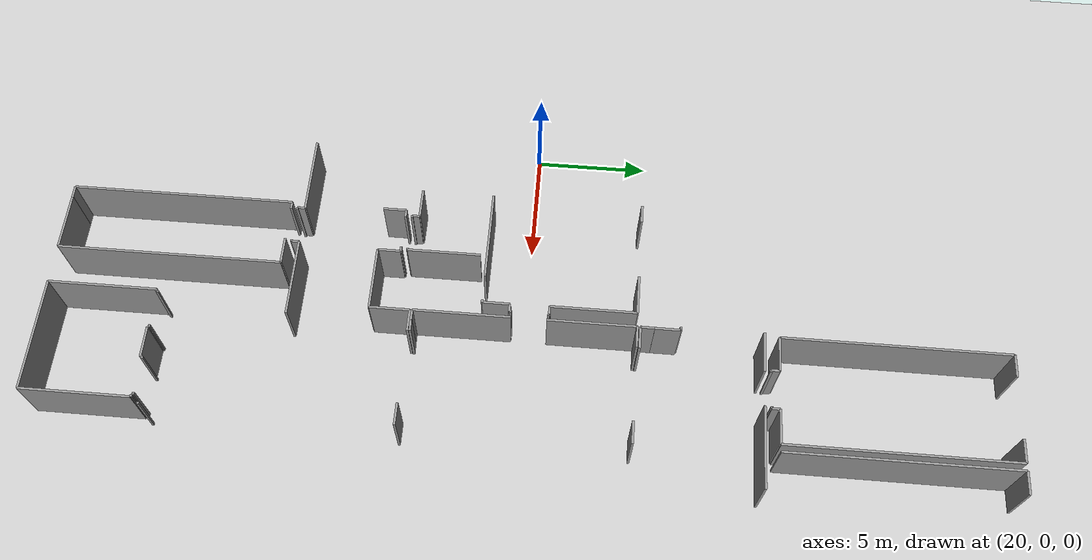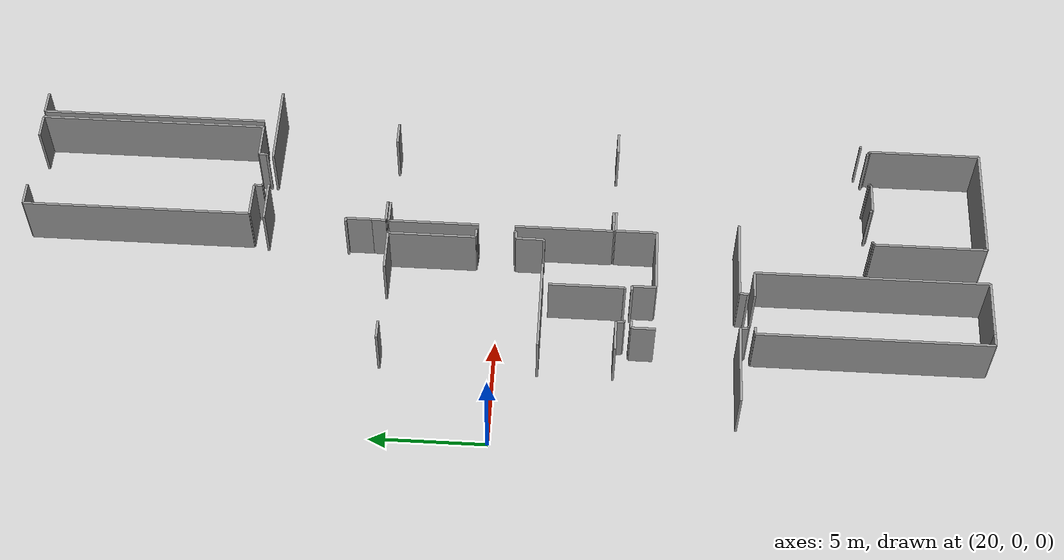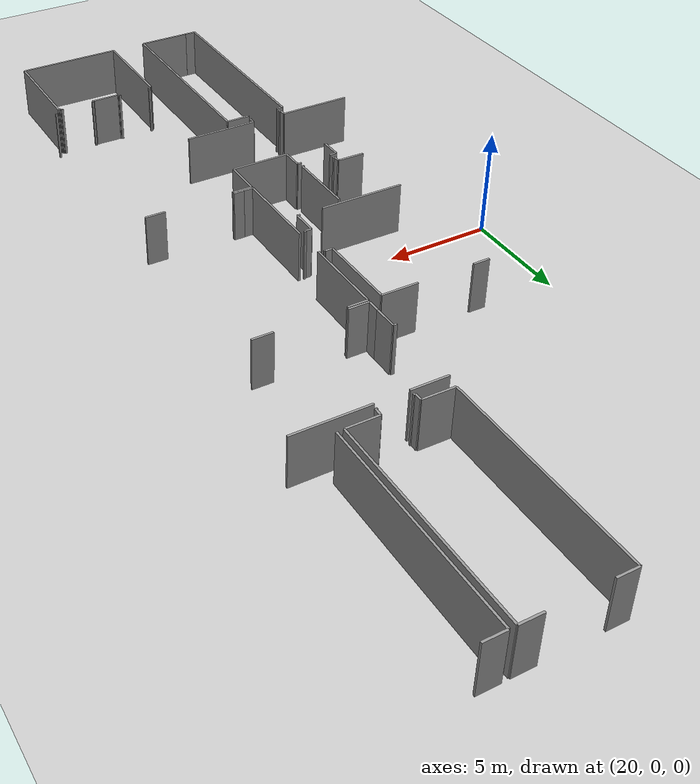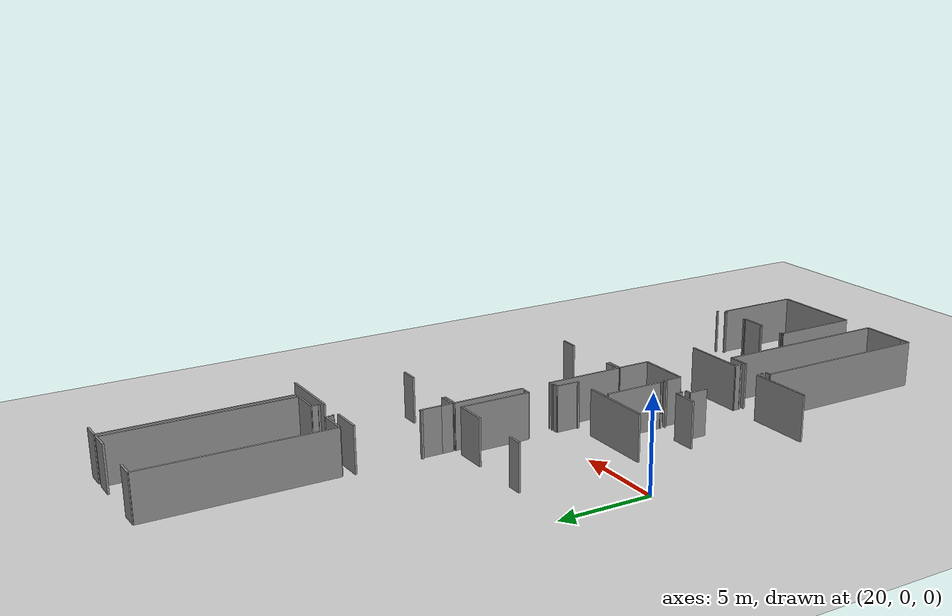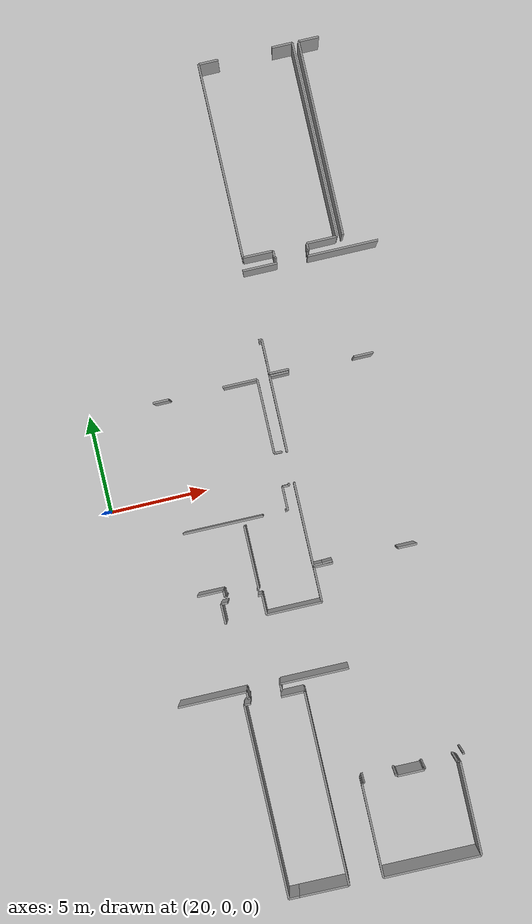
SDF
<sdf version="1.6">
 <world name="default">
  <model name="ground_plane">
   <static>1</static>
   <link name="link">
    <collision name="collision">
     <geometry><plane><normal>0 0 1</normal><size>100 100</size></plane></geometry>
     <surface><friction><ode><mu>100</mu><mu2>50</mu2></ode></friction></surface>
    </collision>
    <visual name="visual">
     <cast_shadows>0</cast_shadows>
     <geometry><plane><normal>0 0 1</normal><size>100 100</size></plane></geometry>
     <material>
      <script><uri>file://media/materials/scripts/gazebo.material</uri><name>Gazebo/Grey</name></script>
     </material>
    </visual>
   </link>
  </model>
  <model name="50055638">
   <static>1</static>
   <link name="Wall_272">
    <collision name="Wall_272_Collision">
     <geometry><box><size>1.02733240552 0.1 2.5</size></box></geometry>
     <pose>0.513666202759 0 1.25 0 0 0</pose>
    </collision>
    <visual name="Wall_272_Visual">
     <pose>0.513666202759 0 1.25 0 0 0</pose>
     <geometry><box><size>1.02733240552 0.1 2.5</size></box></geometry>
     <material>
      <script><uri>file://media/materials/scripts/gazebo.material</uri><name>Gazebo/Grey</name></script>
      <ambient>1 1 1 1</ambient>
     </material>
    </visual>
    <pose>95.1960803005 -27.6089070215 0 0 0 1.57079632679</pose>
   </link>
   <link name="Wall_273">
    <collision name="Wall_273_Collision">
     <geometry><box><size>0.340749496375 0.1 2.5</size></box></geometry>
     <pose>0.170374748187 0 1.25 0 0 0</pose>
    </collision>
    <visual name="Wall_273_Visual">
     <pose>0.170374748187 0 1.25 0 0 0</pose>
     <geometry><box><size>0.340749496375 0.1 2.5</size></box></geometry>
     <material>
      <script><uri>file://media/materials/scripts/gazebo.material</uri><name>Gazebo/Grey</name></script>
      <ambient>1 1 1 1</ambient>
     </material>
    </visual>
    <pose>95.1960803005 -26.581574616 0 0 0 0.0</pose>
   </link>
   <link name="Wall_274">
    <collision name="Wall_274_Collision">
     <geometry><box><size>0.207677984736 0.1 2.5</size></box></geometry>
     <pose>0.103838992368 0 1.25 0 0 0</pose>
    </collision>
    <visual name="Wall_274_Visual">
     <pose>0.103838992368 0 1.25 0 0 0</pose>
     <geometry><box><size>0.207677984736 0.1 2.5</size></box></geometry>
     <material>
      <script><uri>file://media/materials/scripts/gazebo.material</uri><name>Gazebo/Grey</name></script>
      <ambient>1 1 1 1</ambient>
     </material>
    </visual>
    <pose>97.0872971994 -26.581574616 0 0 0 0.0</pose>
   </link>
   <link name="Wall_275">
    <collision name="Wall_275_Collision">
     <geometry><box><size>1.01602069154 0.1 2.5</size></box></geometry>
     <pose>0.50801034577 0 1.25 0 0 0</pose>
    </collision>
    <visual name="Wall_275_Visual">
     <pose>0.50801034577 0 1.25 0 0 0</pose>
     <geometry><box><size>1.01602069154 0.1 2.5</size></box></geometry>
     <material>
      <script><uri>file://media/materials/scripts/gazebo.material</uri><name>Gazebo/Grey</name></script>
      <ambient>1 1 1 1</ambient>
     </material>
    </visual>
    <pose>97.2949751841 -26.581574616 0 0 0 -1.57079632679</pose>
   </link>
   <link name="Wall_276">
    <collision name="Wall_276_Collision">
     <geometry><box><size>2.83568146722 0.1 2.5</size></box></geometry>
     <pose>1.41784073361 0 1.25 0 0 0</pose>
    </collision>
    <visual name="Wall_276_Visual">
     <pose>1.41784073361 0 1.25 0 0 0</pose>
     <geometry><box><size>2.83568146722 0.1 2.5</size></box></geometry>
     <material>
      <script><uri>file://media/materials/scripts/gazebo.material</uri><name>Gazebo/Grey</name></script>
      <ambient>1 1 1 1</ambient>
     </material>
    </visual>
    <pose>97.2949751841 -27.5975953075 0 0 0 0.0</pose>
   </link>
   <link name="Wall_277">
    <collision name="Wall_277_Collision">
     <geometry><box><size>1.78165850063 0.1 2.5</size></box></geometry>
     <pose>0.890829250313 0 1.25 0 0 0</pose>
    </collision>
    <visual name="Wall_277_Visual">
     <pose>0.890829250313 0 1.25 0 0 0</pose>
     <geometry><box><size>1.78165850063 0.1 2.5</size></box></geometry>
     <material>
      <script><uri>file://media/materials/scripts/gazebo.material</uri><name>Gazebo/Grey</name></script>
      <ambient>1 1 1 1</ambient>
     </material>
    </visual>
    <pose>100.130656651 -27.5975953075 0 0 0 1.57079632679</pose>
   </link>
   <link name="Wall_278">
    <collision name="Wall_278_Collision">
     <geometry><box><size>0.971917716813 0.1 2.5</size></box></geometry>
     <pose>0.485958858407 0 1.25 0 0 0</pose>
    </collision>
    <visual name="Wall_278_Visual">
     <pose>0.485958858407 0 1.25 0 0 0</pose>
     <geometry><box><size>0.971917716813 0.1 2.5</size></box></geometry>
     <material>
      <script><uri>file://media/materials/scripts/gazebo.material</uri><name>Gazebo/Grey</name></script>
      <ambient>1 1 1 1</ambient>
     </material>
    </visual>
    <pose>100.130656651 -25.8159368069 0 0 0 0.0</pose>
   </link>
   <link name="Wall_279">
    <collision name="Wall_279_Collision">
     <geometry><box><size>0.973951283371 0.1 2.5</size></box></geometry>
     <pose>0.486975641686 0 1.25 0 0 0</pose>
    </collision>
    <visual name="Wall_279_Visual">
     <pose>0.486975641686 0 1.25 0 0 0</pose>
     <geometry><box><size>0.973951283371 0.1 2.5</size></box></geometry>
     <material>
      <script><uri>file://media/materials/scripts/gazebo.material</uri><name>Gazebo/Grey</name></script>
      <ambient>1 1 1 1</ambient>
     </material>
    </visual>
    <pose>104.44207195 -25.8159368069 0 0 0 0.0</pose>
   </link>
   <link name="Wall_285">
    <collision name="Wall_285_Collision">
     <geometry><box><size>3.52976315304 0.1 2.5</size></box></geometry>
     <pose>1.76488157652 0 1.25 0 0 0</pose>
    </collision>
    <visual name="Wall_285_Visual">
     <pose>1.76488157652 0 1.25 0 0 0</pose>
     <geometry><box><size>3.52976315304 0.1 2.5</size></box></geometry>
     <material>
      <script><uri>file://media/materials/scripts/gazebo.material</uri><name>Gazebo/Grey</name></script>
      <ambient>1 1 1 1</ambient>
     </material>
    </visual>
    <pose>100.709460533 -31.126850069 0 0 0 3.14159265359</pose>
   </link>
   <link name="Wall_286">
    <collision name="Wall_286_Collision">
     <geometry><box><size>0.351171524984 0.1 2.5</size></box></geometry>
     <pose>0.175585762492 0 1.25 0 0 0</pose>
    </collision>
    <visual name="Wall_286_Visual">
     <pose>0.175585762492 0 1.25 0 0 0</pose>
     <geometry><box><size>0.351171524984 0.1 2.5</size></box></geometry>
     <material>
      <script><uri>file://media/materials/scripts/gazebo.material</uri><name>Gazebo/Grey</name></script>
      <ambient>1 1 1 1</ambient>
     </material>
    </visual>
    <pose>97.1796973799 -31.126850069 0 0 0 -1.57079632679</pose>
   </link>
   <link name="Wall_287">
    <collision name="Wall_287_Collision">
     <geometry><box><size>0.0668535005942 0.1 2.5</size></box></geometry>
     <pose>0.0334267502971 0 1.25 0 0 0</pose>
    </collision>
    <visual name="Wall_287_Visual">
     <pose>0.0334267502971 0 1.25 0 0 0</pose>
     <geometry><box><size>0.0668535005942 0.1 2.5</size></box></geometry>
     <material>
      <script><uri>file://media/materials/scripts/gazebo.material</uri><name>Gazebo/Grey</name></script>
      <ambient>1 1 1 1</ambient>
     </material>
    </visual>
    <pose>97.1796973799 -31.4780215939 0 0 0 3.14159265359</pose>
   </link>
   <link name="Wall_288">
    <collision name="Wall_288_Collision">
     <geometry><box><size>0.104855775647 0.1 2.5</size></box></geometry>
     <pose>0.0524278878234 0 1.25 0 0 0</pose>
    </collision>
    <visual name="Wall_288_Visual">
     <pose>0.0524278878234 0 1.25 0 0 0</pose>
     <geometry><box><size>0.104855775647 0.1 2.5</size></box></geometry>
     <material>
      <script><uri>file://media/materials/scripts/gazebo.material</uri><name>Gazebo/Grey</name></script>
      <ambient>1 1 1 1</ambient>
     </material>
    </visual>
    <pose>95.5609783997 -31.4780215939 0 0 0 3.14159265359</pose>
   </link>
   <link name="Wall_289">
    <collision name="Wall_289_Collision">
     <geometry><box><size>0.342910160842 0.1 2.5</size></box></geometry>
     <pose>0.171455080421 0 1.25 0 0 0</pose>
    </collision>
    <visual name="Wall_289_Visual">
     <pose>0.171455080421 0 1.25 0 0 0</pose>
     <geometry><box><size>0.342910160842 0.1 2.5</size></box></geometry>
     <material>
      <script><uri>file://media/materials/scripts/gazebo.material</uri><name>Gazebo/Grey</name></script>
      <ambient>1 1 1 1</ambient>
     </material>
    </visual>
    <pose>95.4561226241 -31.4780215939 0 0 0 1.57079632679</pose>
   </link>
   <link name="Wall_290">
    <collision name="Wall_290_Collision">
     <geometry><box><size>3.51476559968 0.1 2.5</size></box></geometry>
     <pose>1.75738279984 0 1.25 0 0 0</pose>
    </collision>
    <visual name="Wall_290_Visual">
     <pose>1.75738279984 0 1.25 0 0 0</pose>
     <geometry><box><size>3.51476559968 0.1 2.5</size></box></geometry>
     <material>
      <script><uri>file://media/materials/scripts/gazebo.material</uri><name>Gazebo/Grey</name></script>
      <ambient>1 1 1 1</ambient>
     </material>
    </visual>
    <pose>95.4561226241 -31.1351114331 0 0 0 3.14159265359</pose>
   </link>
   <link name="Wall_459">
    <collision name="Wall_459_Collision">
     <geometry><box><size>0.555036572424 0.1 2.5</size></box></geometry>
     <pose>0.277518286212 0 1.25 0 0 0</pose>
    </collision>
    <visual name="Wall_459_Visual">
     <pose>0.277518286212 0 1.25 0 0 0</pose>
     <geometry><box><size>0.555036572424 0.1 2.5</size></box></geometry>
     <material>
      <script><uri>file://media/materials/scripts/gazebo.material</uri><name>Gazebo/Grey</name></script>
      <ambient>1 1 1 1</ambient>
     </material>
    </visual>
    <pose>95.7535317332 -41.709276241 0 0 0 3.14159265359</pose>
   </link>
   <link name="Wall_460">
    <collision name="Wall_460_Collision">
     <geometry><box><size>9.94350497906 0.1 2.5</size></box></geometry>
     <pose>4.97175248953 0 1.25 0 0 0</pose>
    </collision>
    <visual name="Wall_460_Visual">
     <pose>4.97175248953 0 1.25 0 0 0</pose>
     <geometry><box><size>9.94350497906 0.1 2.5</size></box></geometry>
     <material>
      <script><uri>file://media/materials/scripts/gazebo.material</uri><name>Gazebo/Grey</name></script>
      <ambient>1 1 1 1</ambient>
     </material>
    </visual>
    <pose>95.1984951607 -41.709276241 0 0 0 1.57079632679</pose>
   </link>
   <link name="Wall_461">
    <collision name="Wall_461_Collision">
     <geometry><box><size>0.321557711983 0.1 2.5</size></box></geometry>
     <pose>0.160778855992 0 1.25 0 0 0</pose>
    </collision>
    <visual name="Wall_461_Visual">
     <pose>0.160778855992 0 1.25 0 0 0</pose>
     <geometry><box><size>0.321557711983 0.1 2.5</size></box></geometry>
     <material>
      <script><uri>file://media/materials/scripts/gazebo.material</uri><name>Gazebo/Grey</name></script>
      <ambient>1 1 1 1</ambient>
     </material>
    </visual>
    <pose>95.1984951607 -31.7657712619 0 0 0 0.0</pose>
   </link>
   <link name="Wall_462">
    <collision name="Wall_462_Collision">
     <geometry><box><size>1.19459325491 0.1 2.5</size></box></geometry>
     <pose>0.597296627457 0 1.25 0 0 0</pose>
    </collision>
    <visual name="Wall_462_Visual">
     <pose>0.597296627457 0 1.25 0 0 0</pose>
     <geometry><box><size>1.19459325491 0.1 2.5</size></box></geometry>
     <material>
      <script><uri>file://media/materials/scripts/gazebo.material</uri><name>Gazebo/Grey</name></script>
      <ambient>1 1 1 1</ambient>
     </material>
    </visual>
    <pose>97.0889494722 -31.7657712619 0 0 0 0.0</pose>
   </link>
   <link name="Wall_463">
    <collision name="Wall_463_Collision">
     <geometry><box><size>9.96117158853 0.1 2.5</size></box></geometry>
     <pose>4.98058579427 0 1.25 0 0 0</pose>
    </collision>
    <visual name="Wall_463_Visual">
     <pose>4.98058579427 0 1.25 0 0 0</pose>
     <geometry><box><size>9.96117158853 0.1 2.5</size></box></geometry>
     <material>
      <script><uri>file://media/materials/scripts/gazebo.material</uri><name>Gazebo/Grey</name></script>
      <ambient>1 1 1 1</ambient>
     </material>
    </visual>
    <pose>98.2835427271 -31.7657712619 0 0 0 -1.57079632679</pose>
   </link>
   <link name="Wall_464">
    <collision name="Wall_464_Collision">
     <geometry><box><size>2.53007267459 0.1 2.5</size></box></geometry>
     <pose>1.26503633729 0 1.25 0 0 0</pose>
    </collision>
    <visual name="Wall_464_Visual">
     <pose>1.26503633729 0 1.25 0 0 0</pose>
     <geometry><box><size>2.53007267459 0.1 2.5</size></box></geometry>
     <material>
      <script><uri>file://media/materials/scripts/gazebo.material</uri><name>Gazebo/Grey</name></script>
      <ambient>1 1 1 1</ambient>
     </material>
    </visual>
    <pose>98.2835427271 -41.7269428504 0 0 0 3.13460994783</pose>
   </link>
   <link name="Wall_465">
    <collision name="Wall_465_Collision">
     <geometry><box><size>4.80506358073 0.1 2.5</size></box></geometry>
     <pose>2.40253179036 0 1.25 0 0 0</pose>
    </collision>
    <visual name="Wall_465_Visual">
     <pose>2.40253179036 0 1.25 0 0 0</pose>
     <geometry><box><size>4.80506358073 0.1 2.5</size></box></geometry>
     <material>
      <script><uri>file://media/materials/scripts/gazebo.material</uri><name>Gazebo/Grey</name></script>
      <ambient>1 1 1 1</ambient>
     </material>
    </visual>
    <pose>100.04499266 -41.7257989692 0 0 0 1.57079632679</pose>
   </link>
   <link name="Wall_466">
    <collision name="Wall_466_Collision">
     <geometry><box><size>0.0687599692423 0.1 2.5</size></box></geometry>
     <pose>0.0343799846212 0 1.25 0 0 0</pose>
    </collision>
    <visual name="Wall_466_Visual">
     <pose>0.0343799846212 0 1.25 0 0 0</pose>
     <geometry><box><size>0.0687599692423 0.1 2.5</size></box></geometry>
     <material>
      <script><uri>file://media/materials/scripts/gazebo.material</uri><name>Gazebo/Grey</name></script>
      <ambient>1 1 1 1</ambient>
     </material>
    </visual>
    <pose>100.04499266 -36.9207353885 0 0 0 0.0</pose>
   </link>
   <link name="Wall_467">
    <collision name="Wall_467_Collision">
     <geometry><box><size>0.0701580462509 0.1 2.5</size></box></geometry>
     <pose>0.0350790231255 0 1.25 0 0 0</pose>
    </collision>
    <visual name="Wall_467_Visual">
     <pose>0.0350790231255 0 1.25 0 0 0</pose>
     <geometry><box><size>0.0701580462509 0.1 2.5</size></box></geometry>
     <material>
      <script><uri>file://media/materials/scripts/gazebo.material</uri><name>Gazebo/Grey</name></script>
      <ambient>1 1 1 1</ambient>
     </material>
    </visual>
    <pose>100.113752629 -36.9207353885 0 0 0 1.57079632679</pose>
   </link>
   <link name="Wall_468">
    <collision name="Wall_468_Collision">
     <geometry><box><size>0.0971028031444 0.1 2.5</size></box></geometry>
     <pose>0.0485514015722 0 1.25 0 0 0</pose>
    </collision>
    <visual name="Wall_468_Visual">
     <pose>0.0485514015722 0 1.25 0 0 0</pose>
     <geometry><box><size>0.0971028031444 0.1 2.5</size></box></geometry>
     <material>
      <script><uri>file://media/materials/scripts/gazebo.material</uri><name>Gazebo/Grey</name></script>
      <ambient>1 1 1 1</ambient>
     </material>
    </visual>
    <pose>100.113752629 -36.8505773423 0 0 0 0.0</pose>
   </link>
   <link name="Wall_469">
    <collision name="Wall_469_Collision">
     <geometry><box><size>0.106889342205 0.1 2.5</size></box></geometry>
     <pose>0.0534446711024 0 1.25 0 0 0</pose>
    </collision>
    <visual name="Wall_469_Visual">
     <pose>0.0534446711024 0 1.25 0 0 0</pose>
     <geometry><box><size>0.106889342205 0.1 2.5</size></box></geometry>
     <material>
      <script><uri>file://media/materials/scripts/gazebo.material</uri><name>Gazebo/Grey</name></script>
      <ambient>1 1 1 1</ambient>
     </material>
    </visual>
    <pose>101.753569863 -36.8505773423 0 0 0 0.0</pose>
   </link>
   <link name="Wall_470">
    <collision name="Wall_470_Collision">
     <geometry><box><size>0.0718103190793 0.1 2.5</size></box></geometry>
     <pose>0.0359051595397 0 1.25 0 0 0</pose>
    </collision>
    <visual name="Wall_470_Visual">
     <pose>0.0359051595397 0 1.25 0 0 0</pose>
     <geometry><box><size>0.0718103190793 0.1 2.5</size></box></geometry>
     <material>
      <script><uri>file://media/materials/scripts/gazebo.material</uri><name>Gazebo/Grey</name></script>
      <ambient>1 1 1 1</ambient>
     </material>
    </visual>
    <pose>101.860459205 -36.8505773423 0 0 0 -1.57079632679</pose>
   </link>
   <link name="Wall_471">
    <collision name="Wall_471_Collision">
     <geometry><box><size>1.38180847616 0.1 2.5</size></box></geometry>
     <pose>0.69090423808 0 1.25 0 0 0</pose>
    </collision>
    <visual name="Wall_471_Visual">
     <pose>0.69090423808 0 1.25 0 0 0</pose>
     <geometry><box><size>1.38180847616 0.1 2.5</size></box></geometry>
     <material>
      <script><uri>file://media/materials/scripts/gazebo.material</uri><name>Gazebo/Grey</name></script>
      <ambient>1 1 1 1</ambient>
     </material>
    </visual>
    <pose>101.860459205 -36.9223876613 0 0 0 0.0</pose>
   </link>
   <link name="Wall_472">
    <collision name="Wall_472_Collision">
     <geometry><box><size>0.0809613685903 0.1 2.5</size></box></geometry>
     <pose>0.0404806842951 0 1.25 0 0 0</pose>
    </collision>
    <visual name="Wall_472_Visual">
     <pose>0.0404806842951 0 1.25 0 0 0</pose>
     <geometry><box><size>0.0809613685903 0.1 2.5</size></box></geometry>
     <material>
      <script><uri>file://media/materials/scripts/gazebo.material</uri><name>Gazebo/Grey</name></script>
      <ambient>1 1 1 1</ambient>
     </material>
    </visual>
    <pose>103.242267681 -36.9223876613 0 0 0 1.57079632679</pose>
   </link>
   <link name="Wall_473">
    <collision name="Wall_473_Collision">
     <geometry><box><size>0.0929085721185 0.1 2.5</size></box></geometry>
     <pose>0.0464542860593 0 1.25 0 0 0</pose>
    </collision>
    <visual name="Wall_473_Visual">
     <pose>0.0464542860593 0 1.25 0 0 0</pose>
     <geometry><box><size>0.0929085721185 0.1 2.5</size></box></geometry>
     <material>
      <script><uri>file://media/materials/scripts/gazebo.material</uri><name>Gazebo/Grey</name></script>
      <ambient>1 1 1 1</ambient>
     </material>
    </visual>
    <pose>103.242267681 -36.8414262927 0 0 0 0.0</pose>
   </link>
   <link name="Wall_474">
    <collision name="Wall_474_Collision">
     <geometry><box><size>0.116421685445 0.1 2.5</size></box></geometry>
     <pose>0.0582108427227 0 1.25 0 0 0</pose>
    </collision>
    <visual name="Wall_474_Visual">
     <pose>0.0582108427227 0 1.25 0 0 0</pose>
     <geometry><box><size>0.116421685445 0.1 2.5</size></box></geometry>
     <material>
      <script><uri>file://media/materials/scripts/gazebo.material</uri><name>Gazebo/Grey</name></script>
      <ambient>1 1 1 1</ambient>
     </material>
    </visual>
    <pose>104.872679669 -36.8414262927 0 0 0 0.0</pose>
   </link>
   <link name="Wall_475">
    <collision name="Wall_475_Collision">
     <geometry><box><size>0.076131648015 0.1 2.5</size></box></geometry>
     <pose>0.0380658240075 0 1.25 0 0 0</pose>
    </collision>
    <visual name="Wall_475_Visual">
     <pose>0.0380658240075 0 1.25 0 0 0</pose>
     <geometry><box><size>0.076131648015 0.1 2.5</size></box></geometry>
     <material>
      <script><uri>file://media/materials/scripts/gazebo.material</uri><name>Gazebo/Grey</name></script>
      <ambient>1 1 1 1</ambient>
     </material>
    </visual>
    <pose>104.989101354 -36.8414262927 0 0 0 -1.57079632679</pose>
   </link>
   <link name="Wall_476">
    <collision name="Wall_476_Collision">
     <geometry><box><size>0.0973569989642 0.1 2.5</size></box></geometry>
     <pose>0.0486784994821 0 1.25 0 0 0</pose>
    </collision>
    <visual name="Wall_476_Visual">
     <pose>0.0486784994821 0 1.25 0 0 0</pose>
     <geometry><box><size>0.0973569989642 0.1 2.5</size></box></geometry>
     <material>
      <script><uri>file://media/materials/scripts/gazebo.material</uri><name>Gazebo/Grey</name></script>
      <ambient>1 1 1 1</ambient>
     </material>
    </visual>
    <pose>104.989101354 -36.9175579408 0 0 0 0.0</pose>
   </link>
   <link name="Wall_477">
    <collision name="Wall_477_Collision">
     <geometry><box><size>4.81739207799 0.1 2.5</size></box></geometry>
     <pose>2.40869603899 0 1.25 0 0 0</pose>
    </collision>
    <visual name="Wall_477_Visual">
     <pose>2.40869603899 0 1.25 0 0 0</pose>
     <geometry><box><size>4.81739207799 0.1 2.5</size></box></geometry>
     <material>
      <script><uri>file://media/materials/scripts/gazebo.material</uri><name>Gazebo/Grey</name></script>
      <ambient>1 1 1 1</ambient>
     </material>
    </visual>
    <pose>105.086458353 -36.9175579408 0 0 0 -1.57079632679</pose>
   </link>
   <link name="Wall_478">
    <collision name="Wall_478_Collision">
     <geometry><box><size>5.04147399838 0.1 2.5</size></box></geometry>
     <pose>2.52073699919 0 1.25 0 0 0</pose>
    </collision>
    <visual name="Wall_478_Visual">
     <pose>2.52073699919 0 1.25 0 0 0</pose>
     <geometry><box><size>5.04147399838 0.1 2.5</size></box></geometry>
     <material>
      <script><uri>file://media/materials/scripts/gazebo.material</uri><name>Gazebo/Grey</name></script>
      <ambient>1 1 1 1</ambient>
     </material>
    </visual>
    <pose>105.086458353 -41.7349500187 0 0 0 3.13977749903</pose>
   </link>
   <link name="Wall_491">
    <collision name="Wall_491_Collision">
     <geometry><box><size>0.0936711595778 0.1 2.5</size></box></geometry>
     <pose>0.0468355797889 0 1.25 0 0 0</pose>
    </collision>
    <visual name="Wall_491_Visual">
     <pose>0.0468355797889 0 1.25 0 0 0</pose>
     <geometry><box><size>0.0936711595778 0.1 2.5</size></box></geometry>
     <material>
      <script><uri>file://media/materials/scripts/gazebo.material</uri><name>Gazebo/Grey</name></script>
      <ambient>1 1 1 1</ambient>
     </material>
    </visual>
    <pose>105.342179348 -36.6000673619 0 0 0 1.57079632679</pose>
   </link>
   <link name="Wall_509">
    <collision name="Wall_509_Collision">
     <geometry><box><size>0.472422931005 0.1 2.5</size></box></geometry>
     <pose>0.236211465502 0 1.25 0 0 0</pose>
    </collision>
    <visual name="Wall_509_Visual">
     <pose>0.236211465502 0 1.25 0 0 0</pose>
     <geometry><box><size>0.472422931005 0.1 2.5</size></box></geometry>
     <material>
      <script><uri>file://media/materials/scripts/gazebo.material</uri><name>Gazebo/Grey</name></script>
      <ambient>1 1 1 1</ambient>
     </material>
    </visual>
    <pose>100.587573637 -25.7187069059 0 0 0 3.14159265359</pose>
   </link>
   <link name="Wall_510">
    <collision name="Wall_510_Collision">
     <geometry><box><size>4.26629554077 0.1 2.5</size></box></geometry>
     <pose>2.13314777038 0 1.25 0 0 0</pose>
    </collision>
    <visual name="Wall_510_Visual">
     <pose>2.13314777038 0 1.25 0 0 0</pose>
     <geometry><box><size>4.26629554077 0.1 2.5</size></box></geometry>
     <material>
      <script><uri>file://media/materials/scripts/gazebo.material</uri><name>Gazebo/Grey</name></script>
      <ambient>1 1 1 1</ambient>
     </material>
    </visual>
    <pose>100.115150706 -25.7187069059 0 0 0 1.57079632679</pose>
   </link>
   <link name="Wall_511">
    <collision name="Wall_511_Collision">
     <geometry><box><size>3.9036852039 0.1 2.5</size></box></geometry>
     <pose>1.95184260195 0 1.25 0 0 0</pose>
    </collision>
    <visual name="Wall_511_Visual">
     <pose>1.95184260195 0 1.25 0 0 0</pose>
     <geometry><box><size>3.9036852039 0.1 2.5</size></box></geometry>
     <material>
      <script><uri>file://media/materials/scripts/gazebo.material</uri><name>Gazebo/Grey</name></script>
      <ambient>1 1 1 1</ambient>
     </material>
    </visual>
    <pose>100.115150706 -19.8959703608 0 0 0 1.57079632679</pose>
   </link>
   <link name="Wall_512">
    <collision name="Wall_512_Collision">
     <geometry><box><size>0.977891318577 0.1 2.5</size></box></geometry>
     <pose>0.488945659289 0 1.25 0 0 0</pose>
    </collision>
    <visual name="Wall_512_Visual">
     <pose>0.488945659289 0 1.25 0 0 0</pose>
     <geometry><box><size>0.977891318577 0.1 2.5</size></box></geometry>
     <material>
      <script><uri>file://media/materials/scripts/gazebo.material</uri><name>Gazebo/Grey</name></script>
      <ambient>1 1 1 1</ambient>
     </material>
    </visual>
    <pose>100.115150706 -15.9922851569 0 0 0 0.0</pose>
   </link>
   <link name="Wall_513">
    <collision name="Wall_513_Collision">
     <geometry><box><size>1.00127733399 0.1 2.5</size></box></geometry>
     <pose>0.500638666997 0 1.25 0 0 0</pose>
    </collision>
    <visual name="Wall_513_Visual">
     <pose>0.500638666997 0 1.25 0 0 0</pose>
     <geometry><box><size>1.00127733399 0.1 2.5</size></box></geometry>
     <material>
      <script><uri>file://media/materials/scripts/gazebo.material</uri><name>Gazebo/Grey</name></script>
      <ambient>1 1 1 1</ambient>
     </material>
    </visual>
    <pose>104.432285411 -15.9922851569 0 0 0 0.0</pose>
   </link>
   <link name="Wall_524">
    <collision name="Wall_524_Collision">
     <geometry><box><size>0.517033313205 0.1 2.5</size></box></geometry>
     <pose>0.258516656602 0 1.25 0 0 0</pose>
    </collision>
    <visual name="Wall_524_Visual">
     <pose>0.258516656602 0 1.25 0 0 0</pose>
     <geometry><box><size>0.517033313205 0.1 2.5</size></box></geometry>
     <material>
      <script><uri>file://media/materials/scripts/gazebo.material</uri><name>Gazebo/Grey</name></script>
      <ambient>1 1 1 1</ambient>
     </material>
    </visual>
    <pose>101.104226641 -25.6988796319 0 0 0 -3.10323509276</pose>
   </link>
   <link name="Wall_543">
    <collision name="Wall_543_Collision">
     <geometry><box><size>0.81304532947 0.1 2.5</size></box></geometry>
     <pose>0.406522664735 0 1.25 0 0 0</pose>
    </collision>
    <visual name="Wall_543_Visual">
     <pose>0.406522664735 0 1.25 0 0 0</pose>
     <geometry><box><size>0.81304532947 0.1 2.5</size></box></geometry>
     <material>
      <script><uri>file://media/materials/scripts/gazebo.material</uri><name>Gazebo/Grey</name></script>
      <ambient>1 1 1 1</ambient>
     </material>
    </visual>
    <pose>94.1212132766 -16.014654389 0 0 0 0.0</pose>
   </link>
   <link name="Wall_544">
    <collision name="Wall_544_Collision">
     <geometry><box><size>1.77136356993 0.1 2.5</size></box></geometry>
     <pose>0.885681784963 0 1.25 0 0 0</pose>
    </collision>
    <visual name="Wall_544_Visual">
     <pose>0.885681784963 0 1.25 0 0 0</pose>
     <geometry><box><size>1.77136356993 0.1 2.5</size></box></geometry>
     <material>
      <script><uri>file://media/materials/scripts/gazebo.material</uri><name>Gazebo/Grey</name></script>
      <ambient>1 1 1 1</ambient>
     </material>
    </visual>
    <pose>97.6958419919 -16.014654389 0 0 0 0.0</pose>
   </link>
   <link name="Wall_545">
    <collision name="Wall_545_Collision">
     <geometry><box><size>3.79755844915 0.1 2.5</size></box></geometry>
     <pose>1.89877922458 0 1.25 0 0 0</pose>
    </collision>
    <visual name="Wall_545_Visual">
     <pose>1.89877922458 0 1.25 0 0 0</pose>
     <geometry><box><size>3.79755844915 0.1 2.5</size></box></geometry>
     <material>
      <script><uri>file://media/materials/scripts/gazebo.material</uri><name>Gazebo/Grey</name></script>
      <ambient>1 1 1 1</ambient>
     </material>
    </visual>
    <pose>99.4672055618 -16.014654389 0 0 0 -1.57079632679</pose>
   </link>
   <link name="Wall_546">
    <collision name="Wall_546_Collision">
     <geometry><box><size>0.373922050852 0.1 2.5</size></box></geometry>
     <pose>0.186961025426 0 1.25 0 0 0</pose>
    </collision>
    <visual name="Wall_546_Visual">
     <pose>0.186961025426 0 1.25 0 0 0</pose>
     <geometry><box><size>0.373922050852 0.1 2.5</size></box></geometry>
     <material>
      <script><uri>file://media/materials/scripts/gazebo.material</uri><name>Gazebo/Grey</name></script>
      <ambient>1 1 1 1</ambient>
     </material>
    </visual>
    <pose>99.4672055618 -19.8122128382 0 0 0 0.0</pose>
   </link>
   <link name="Wall_547">
    <collision name="Wall_547_Collision">
     <geometry><box><size>0.0664722068646 0.1 2.5</size></box></geometry>
     <pose>0.0332361034323 0 1.25 0 0 0</pose>
    </collision>
    <visual name="Wall_547_Visual">
     <pose>0.0332361034323 0 1.25 0 0 0</pose>
     <geometry><box><size>0.0664722068646 0.1 2.5</size></box></geometry>
     <material>
      <script><uri>file://media/materials/scripts/gazebo.material</uri><name>Gazebo/Grey</name></script>
      <ambient>1 1 1 1</ambient>
     </material>
    </visual>
    <pose>99.8411276127 -19.8122128382 0 0 0 -1.57079632679</pose>
   </link>
   <link name="Wall_548">
    <collision name="Wall_548_Collision">
     <geometry><box><size>0.104855775647 0.1 2.5</size></box></geometry>
     <pose>0.0524278878234 0 1.25 0 0 0</pose>
    </collision>
    <visual name="Wall_548_Visual">
     <pose>0.0524278878234 0 1.25 0 0 0</pose>
     <geometry><box><size>0.104855775647 0.1 2.5</size></box></geometry>
     <material>
      <script><uri>file://media/materials/scripts/gazebo.material</uri><name>Gazebo/Grey</name></script>
      <ambient>1 1 1 1</ambient>
     </material>
    </visual>
    <pose>99.8411276127 -21.4343634619 0 0 0 -1.57079632679</pose>
   </link>
   <link name="Wall_549">
    <collision name="Wall_549_Collision">
     <geometry><box><size>0.34570631486 0.1 2.5</size></box></geometry>
     <pose>0.17285315743 0 1.25 0 0 0</pose>
    </collision>
    <visual name="Wall_549_Visual">
     <pose>0.17285315743 0 1.25 0 0 0</pose>
     <geometry><box><size>0.34570631486 0.1 2.5</size></box></geometry>
     <material>
      <script><uri>file://media/materials/scripts/gazebo.material</uri><name>Gazebo/Grey</name></script>
      <ambient>1 1 1 1</ambient>
     </material>
    </visual>
    <pose>99.8411276127 -21.5392192375 0 0 0 3.14159265359</pose>
   </link>
   <link name="Wall_550">
    <collision name="Wall_550_Collision">
     <geometry><box><size>1.20755724172 0.1 2.5</size></box></geometry>
     <pose>0.603778620861 0 1.25 0 0 0</pose>
    </collision>
    <visual name="Wall_550_Visual">
     <pose>0.603778620861 0 1.25 0 0 0</pose>
     <geometry><box><size>1.20755724172 0.1 2.5</size></box></geometry>
     <material>
      <script><uri>file://media/materials/scripts/gazebo.material</uri><name>Gazebo/Grey</name></script>
      <ambient>1 1 1 1</ambient>
     </material>
    </visual>
    <pose>99.4954212978 -21.5392192375 0 0 0 -1.57079632679</pose>
   </link>
   <link name="Wall_551">
    <collision name="Wall_551_Collision">
     <geometry><box><size>0.127097909875 0.1 2.5</size></box></geometry>
     <pose>0.0635489549374 0 1.25 0 0 0</pose>
    </collision>
    <visual name="Wall_551_Visual">
     <pose>0.0635489549374 0 1.25 0 0 0</pose>
     <geometry><box><size>0.127097909875 0.1 2.5</size></box></geometry>
     <material>
      <script><uri>file://media/materials/scripts/gazebo.material</uri><name>Gazebo/Grey</name></script>
      <ambient>1 1 1 1</ambient>
     </material>
    </visual>
    <pose>99.4954212978 -22.7467764793 0 0 0 3.14159265359</pose>
   </link>
   <link name="Wall_552">
    <collision name="Wall_552_Collision">
     <geometry><box><size>4.10527878146 0.1 2.5</size></box></geometry>
     <pose>2.05263939073 0 1.25 0 0 0</pose>
    </collision>
    <visual name="Wall_552_Visual">
     <pose>2.05263939073 0 1.25 0 0 0</pose>
     <geometry><box><size>4.10527878146 0.1 2.5</size></box></geometry>
     <material>
      <script><uri>file://media/materials/scripts/gazebo.material</uri><name>Gazebo/Grey</name></script>
      <ambient>1 1 1 1</ambient>
     </material>
    </visual>
    <pose>98.2264757656 -22.7467764793 0 0 0 3.13877532358</pose>
   </link>
   <link name="Wall_553">
    <collision name="Wall_553_Collision">
     <geometry><box><size>9.91034513437 0.1 2.5</size></box></geometry>
     <pose>4.95517256719 0 1.25 0 0 0</pose>
    </collision>
    <visual name="Wall_553_Visual">
     <pose>4.95517256719 0 1.25 0 0 0</pose>
     <geometry><box><size>9.91034513437 0.1 2.5</size></box></geometry>
     <material>
      <script><uri>file://media/materials/scripts/gazebo.material</uri><name>Gazebo/Grey</name></script>
      <ambient>1 1 1 1</ambient>
     </material>
    </visual>
    <pose>100.132817316 -9.9163695753 0 0 0 1.57079632679</pose>
   </link>
   <link name="Wall_554">
    <collision name="Wall_554_Collision">
     <geometry><box><size>1.00051474654 0.1 2.5</size></box></geometry>
     <pose>0.500257373268 0 1.25 0 0 0</pose>
    </collision>
    <visual name="Wall_554_Visual">
     <pose>0.500257373268 0 1.25 0 0 0</pose>
     <geometry><box><size>1.00051474654 0.1 2.5</size></box></geometry>
     <material>
      <script><uri>file://media/materials/scripts/gazebo.material</uri><name>Gazebo/Grey</name></script>
      <ambient>1 1 1 1</ambient>
     </material>
    </visual>
    <pose>100.132817316 -0.00602444092807 0 0 0 0.0</pose>
   </link>
   <link name="Wall_555">
    <collision name="Wall_555_Collision">
     <geometry><box><size>1.05109971467 0.1 2.5</size></box></geometry>
     <pose>0.525549857333 0 1.25 0 0 0</pose>
    </collision>
    <visual name="Wall_555_Visual">
     <pose>0.525549857333 0 1.25 0 0 0</pose>
     <geometry><box><size>1.05109971467 0.1 2.5</size></box></geometry>
     <material>
      <script><uri>file://media/materials/scripts/gazebo.material</uri><name>Gazebo/Grey</name></script>
      <ambient>1 1 1 1</ambient>
     </material>
    </visual>
    <pose>103.896313525 -0.00602444092807 0 0 0 0.0</pose>
   </link>
   <link name="Wall_556">
    <collision name="Wall_556_Collision">
     <geometry><box><size>9.92534268774 0.1 2.5</size></box></geometry>
     <pose>4.96267134387 0 1.25 0 0 0</pose>
    </collision>
    <visual name="Wall_556_Visual">
     <pose>4.96267134387 0 1.25 0 0 0</pose>
     <geometry><box><size>9.92534268774 0.1 2.5</size></box></geometry>
     <material>
      <script><uri>file://media/materials/scripts/gazebo.material</uri><name>Gazebo/Grey</name></script>
      <ambient>1 1 1 1</ambient>
     </material>
    </visual>
    <pose>104.94741324 -0.00602444092807 0 0 0 -1.57079632679</pose>
   </link>
   <link name="Wall_557">
    <collision name="Wall_557_Collision">
     <geometry><box><size>1.5380118074 0.1 2.5</size></box></geometry>
     <pose>0.769005903698 0 1.25 0 0 0</pose>
    </collision>
    <visual name="Wall_557_Visual">
     <pose>0.769005903698 0 1.25 0 0 0</pose>
     <geometry><box><size>1.5380118074 0.1 2.5</size></box></geometry>
     <material>
      <script><uri>file://media/materials/scripts/gazebo.material</uri><name>Gazebo/Grey</name></script>
      <ambient>1 1 1 1</ambient>
     </material>
    </visual>
    <pose>104.94741324 -9.93136712867 0 0 0 3.14159265359</pose>
   </link>
   <link name="Wall_558">
    <collision name="Wall_558_Collision">
     <geometry><box><size>0.365025197161 0.1 2.5</size></box></geometry>
     <pose>0.18251259858 0 1.25 0 0 0</pose>
    </collision>
    <visual name="Wall_558_Visual">
     <pose>0.18251259858 0 1.25 0 0 0</pose>
     <geometry><box><size>0.365025197161 0.1 2.5</size></box></geometry>
     <material>
      <script><uri>file://media/materials/scripts/gazebo.material</uri><name>Gazebo/Grey</name></script>
      <ambient>1 1 1 1</ambient>
     </material>
    </visual>
    <pose>103.409401432 -9.93136712867 0 0 0 -1.57079632679</pose>
   </link>
   <link name="Wall_559">
    <collision name="Wall_559_Collision">
     <geometry><box><size>0.0826136414187 0.1 2.5</size></box></geometry>
     <pose>0.0413068207093 0 1.25 0 0 0</pose>
    </collision>
    <visual name="Wall_559_Visual">
     <pose>0.0413068207093 0 1.25 0 0 0</pose>
     <geometry><box><size>0.0826136414187 0.1 2.5</size></box></geometry>
     <material>
      <script><uri>file://media/materials/scripts/gazebo.material</uri><name>Gazebo/Grey</name></script>
      <ambient>1 1 1 1</ambient>
     </material>
    </visual>
    <pose>103.409401432 -10.2963923258 0 0 0 3.14159265359</pose>
   </link>
   <link name="Wall_560">
    <collision name="Wall_560_Collision">
     <geometry><box><size>0.0926543762988 0.1 2.5</size></box></geometry>
     <pose>0.0463271881494 0 1.25 0 0 0</pose>
    </collision>
    <visual name="Wall_560_Visual">
     <pose>0.0463271881494 0 1.25 0 0 0</pose>
     <geometry><box><size>0.0926543762988 0.1 2.5</size></box></geometry>
     <material>
      <script><uri>file://media/materials/scripts/gazebo.material</uri><name>Gazebo/Grey</name></script>
      <ambient>1 1 1 1</ambient>
     </material>
    </visual>
    <pose>101.775049409 -10.2963923258 0 0 0 3.14159265359</pose>
   </link>
   <link name="Wall_561">
    <collision name="Wall_561_Collision">
     <geometry><box><size>0.362737434783 0.1 2.5</size></box></geometry>
     <pose>0.181368717391 0 1.25 0 0 0</pose>
    </collision>
    <visual name="Wall_561_Visual">
     <pose>0.181368717391 0 1.25 0 0 0</pose>
     <geometry><box><size>0.362737434783 0.1 2.5</size></box></geometry>
     <material>
      <script><uri>file://media/materials/scripts/gazebo.material</uri><name>Gazebo/Grey</name></script>
      <ambient>1 1 1 1</ambient>
     </material>
    </visual>
    <pose>101.682395033 -10.2963923258 0 0 0 1.57079632679</pose>
   </link>
   <link name="Wall_562">
    <collision name="Wall_562_Collision">
     <geometry><box><size>1.5496741218 0.1 2.5</size></box></geometry>
     <pose>0.774837060898 0 1.25 0 0 0</pose>
    </collision>
    <visual name="Wall_562_Visual">
     <pose>0.774837060898 0 1.25 0 0 0</pose>
     <geometry><box><size>1.5496741218 0.1 2.5</size></box></geometry>
     <material>
      <script><uri>file://media/materials/scripts/gazebo.material</uri><name>Gazebo/Grey</name></script>
      <ambient>1 1 1 1</ambient>
     </material>
    </visual>
    <pose>101.682395033 -9.93365489105 0 0 0 3.13043826058</pose>
   </link>
   <link name="Wall_565">
    <collision name="Wall_565_Collision">
     <geometry><box><size>3.24557222656 0.1 2.5</size></box></geometry>
     <pose>1.62278611328 0 1.25 0 0 0</pose>
    </collision>
    <visual name="Wall_565_Visual">
     <pose>1.62278611328 0 1.25 0 0 0</pose>
     <geometry><box><size>3.24557222656 0.1 2.5</size></box></geometry>
     <material>
      <script><uri>file://media/materials/scripts/gazebo.material</uri><name>Gazebo/Grey</name></script>
      <ambient>1 1 1 1</ambient>
     </material>
    </visual>
    <pose>97.1986349684 -23.0385932803 0 0 0 -1.57079632679</pose>
   </link>
   <link name="Wall_566">
    <collision name="Wall_566_Collision">
     <geometry><box><size>0.0904937118309 0.1 2.5</size></box></geometry>
     <pose>0.0452468559155 0 1.25 0 0 0</pose>
    </collision>
    <visual name="Wall_566_Visual">
     <pose>0.0452468559155 0 1.25 0 0 0</pose>
     <geometry><box><size>0.0904937118309 0.1 2.5</size></box></geometry>
     <material>
      <script><uri>file://media/materials/scripts/gazebo.material</uri><name>Gazebo/Grey</name></script>
      <ambient>1 1 1 1</ambient>
     </material>
    </visual>
    <pose>97.1986349684 -26.2841655069 0 0 0 3.14159265359</pose>
   </link>
   <link name="Wall_567">
    <collision name="Wall_567_Collision">
     <geometry><box><size>0.100534446711 0.1 2.5</size></box></geometry>
     <pose>0.0502672233555 0 1.25 0 0 0</pose>
    </collision>
    <visual name="Wall_567_Visual">
     <pose>0.0502672233555 0 1.25 0 0 0</pose>
     <geometry><box><size>0.100534446711 0.1 2.5</size></box></geometry>
     <material>
      <script><uri>file://media/materials/scripts/gazebo.material</uri><name>Gazebo/Grey</name></script>
      <ambient>1 1 1 1</ambient>
     </material>
    </visual>
    <pose>95.560597106 -26.2841655069 0 0 0 3.14159265359</pose>
   </link>
   <link name="Wall_568">
    <collision name="Wall_568_Collision">
     <geometry><box><size>0.335919775799 0.1 2.5</size></box></geometry>
     <pose>0.1679598879 0 1.25 0 0 0</pose>
    </collision>
    <visual name="Wall_568_Visual">
     <pose>0.1679598879 0 1.25 0 0 0</pose>
     <geometry><box><size>0.335919775799 0.1 2.5</size></box></geometry>
     <material>
      <script><uri>file://media/materials/scripts/gazebo.material</uri><name>Gazebo/Grey</name></script>
      <ambient>1 1 1 1</ambient>
     </material>
    </visual>
    <pose>95.4600626593 -26.2841655069 0 0 0 1.57079632679</pose>
   </link>
   <link name="Wall_569">
    <collision name="Wall_569_Collision">
     <geometry><box><size>1.34153349051 0.1 2.5</size></box></geometry>
     <pose>0.670766745253 0 1.25 0 0 0</pose>
    </collision>
    <visual name="Wall_569_Visual">
     <pose>0.670766745253 0 1.25 0 0 0</pose>
     <geometry><box><size>1.34153349051 0.1 2.5</size></box></geometry>
     <material>
      <script><uri>file://media/materials/scripts/gazebo.material</uri><name>Gazebo/Grey</name></script>
      <ambient>1 1 1 1</ambient>
     </material>
    </visual>
    <pose>95.4600626593 -25.9482457311 0 0 0 3.1368555976</pose>
   </link>
   <link name="Wall_570">
    <collision name="Wall_570_Collision">
     <geometry><box><size>9.92691870182 0.1 2.5</size></box></geometry>
     <pose>4.96345935091 0 1.25 0 0 0</pose>
    </collision>
    <visual name="Wall_570_Visual">
     <pose>4.96345935091 0 1.25 0 0 0</pose>
     <geometry><box><size>9.92691870182 0.1 2.5</size></box></geometry>
     <material>
      <script><uri>file://media/materials/scripts/gazebo.material</uri><name>Gazebo/Grey</name></script>
      <ambient>1 1 1 1</ambient>
     </material>
    </visual>
    <pose>105.269352246 -9.92691870182 0 0 0 1.57079632679</pose>
   </link>
   <link name="Wall_571">
    <collision name="Wall_571_Collision">
     <geometry><box><size>1.02695111179 0.1 2.5</size></box></geometry>
     <pose>0.513475555894 0 1.25 0 0 0</pose>
    </collision>
    <visual name="Wall_571_Visual">
     <pose>0.513475555894 0 1.25 0 0 0</pose>
     <geometry><box><size>1.02695111179 0.1 2.5</size></box></geometry>
     <material>
      <script><uri>file://media/materials/scripts/gazebo.material</uri><name>Gazebo/Grey</name></script>
      <ambient>1 1 1 1</ambient>
     </material>
    </visual>
    <pose>105.269352246 -0.0 0 0 0 0.0</pose>
   </link>
   <link name="Wall_629">
    <collision name="Wall_629_Collision">
     <geometry><box><size>1.12252874001 0.1 2.5</size></box></geometry>
     <pose>0.561264370007 0 1.25 0 0 0</pose>
    </collision>
    <visual name="Wall_629_Visual">
     <pose>0.561264370007 0 1.25 0 0 0</pose>
     <geometry><box><size>1.12252874001 0.1 2.5</size></box></geometry>
     <material>
      <script><uri>file://media/materials/scripts/gazebo.material</uri><name>Gazebo/Grey</name></script>
      <ambient>1 1 1 1</ambient>
     </material>
    </visual>
    <pose>100.132817316 -15.2518127339 0 0 0 1.57079632679</pose>
   </link>
   <link name="Wall_630">
    <collision name="Wall_630_Collision">
     <geometry><box><size>0.164464695378 0.1 2.5</size></box></geometry>
     <pose>0.082232347689 0 1.25 0 0 0</pose>
    </collision>
    <visual name="Wall_630_Visual">
     <pose>0.082232347689 0 1.25 0 0 0</pose>
     <geometry><box><size>0.164464695378 0.1 2.5</size></box></geometry>
     <material>
      <script><uri>file://media/materials/scripts/gazebo.material</uri><name>Gazebo/Grey</name></script>
      <ambient>1 1 1 1</ambient>
     </material>
    </visual>
    <pose>100.132817316 -14.1292839939 0 0 0 3.14159265359</pose>
   </link>
   <link name="Wall_631">
    <collision name="Wall_631_Collision">
     <geometry><box><size>1.77428682185 0.1 2.5</size></box></geometry>
     <pose>0.887143410927 0 1.25 0 0 0</pose>
    </collision>
    <visual name="Wall_631_Visual">
     <pose>0.887143410927 0 1.25 0 0 0</pose>
     <geometry><box><size>1.77428682185 0.1 2.5</size></box></geometry>
     <material>
      <script><uri>file://media/materials/scripts/gazebo.material</uri><name>Gazebo/Grey</name></script>
      <ambient>1 1 1 1</ambient>
     </material>
    </visual>
    <pose>99.9683526204 -10.5672379718 0 0 0 0.0</pose>
   </link>
   <link name="Wall_632">
    <collision name="Wall_632_Collision">
     <geometry><box><size>3.60843675926 0.1 2.5</size></box></geometry>
     <pose>1.80421837963 0 1.25 0 0 0</pose>
    </collision>
    <visual name="Wall_632_Visual">
     <pose>1.80421837963 0 1.25 0 0 0</pose>
     <geometry><box><size>3.60843675926 0.1 2.5</size></box></geometry>
     <material>
      <script><uri>file://media/materials/scripts/gazebo.material</uri><name>Gazebo/Grey</name></script>
      <ambient>1 1 1 1</ambient>
     </material>
    </visual>
    <pose>103.30009723 -10.5672379718 0 0 0 0.0</pose>
   </link>
   <link name="Wall_661">
    <collision name="Wall_661_Collision">
     <geometry><box><size>0.998608277887 0.1 2.5</size></box></geometry>
     <pose>0.499304138943 0 1.25 0 0 0</pose>
    </collision>
    <visual name="Wall_661_Visual">
     <pose>0.499304138943 0 1.25 0 0 0</pose>
     <geometry><box><size>0.998608277887 0.1 2.5</size></box></geometry>
     <material>
      <script><uri>file://media/materials/scripts/gazebo.material</uri><name>Gazebo/Grey</name></script>
      <ambient>1 1 1 1</ambient>
     </material>
    </visual>
    <pose>101.121639055 -15.8692543801 0 0 0 3.14159265359</pose>
   </link>
   <link name="Wall_662">
    <collision name="Wall_662_Collision">
     <geometry><box><size>0.617519200329 0.1 2.5</size></box></geometry>
     <pose>0.308759600164 0 1.25 0 0 0</pose>
    </collision>
    <visual name="Wall_662_Visual">
     <pose>0.308759600164 0 1.25 0 0 0</pose>
     <geometry><box><size>0.617519200329 0.1 2.5</size></box></geometry>
     <material>
      <script><uri>file://media/materials/scripts/gazebo.material</uri><name>Gazebo/Grey</name></script>
      <ambient>1 1 1 1</ambient>
     </material>
    </visual>
    <pose>100.123030777 -15.8692543801 0 0 0 1.55494750983</pose>
   </link>
   <pose>-70.65 20.8744774687 0 0 0 0</pose>
  </model>
 </world>
</sdf>
